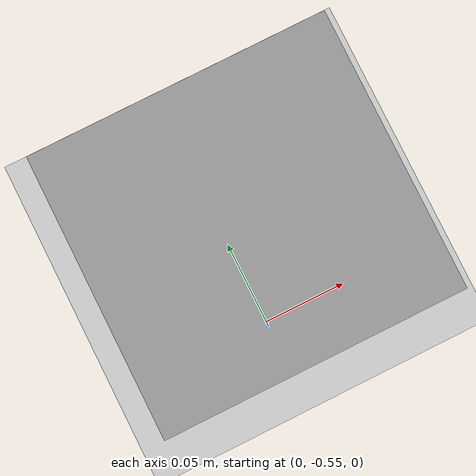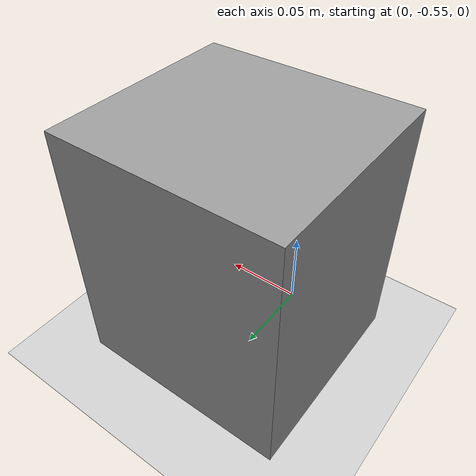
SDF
<sdf version="1.6">
 <world name="default">
  <model name="ground_plane">
   <static>1</static>
   <link name="link">
    <collision name="collision">
     <geometry><plane><normal>0 0 1</normal><size>100 100</size></plane></geometry>
     <surface>
      <contact><collide_bitmask>65535</collide_bitmask></contact>
      <friction><ode><mu>100</mu><mu2>50</mu2></ode></friction>
     </surface>
    </collision>
    <visual name="visual">
     <cast_shadows>0</cast_shadows>
     <geometry><plane><normal>0 0 1</normal><size>100 100</size></plane></geometry>
     <material>
      <script><uri>file://media/materials/scripts/gazebo.material</uri><name>Gazebo/Grey</name></script>
     </material>
    </visual>
   </link>
  </model>
  <model name="unit_box_soft">
   <link name="link">
    <inertial>
     <mass>0.02</mass>
     <inertia>
      <ixx>6.545e-05</ixx>
      <ixy>0</ixy>
      <ixz>0</ixz>
      <iyy>6.894e-05</iyy>
      <iyz>0</iyz>
      <izz>5.449e-05</izz>
     </inertia>
    </inertial>
    <visual name="visual">
     <geometry><box><size>0.131884 0.123693 0.154823</size></box></geometry>
     <material>
      <script><name>Gazebo/Grey</name><uri>file://media/materials/scripts/gazebo.material</uri></script>
      <shader type="vertex"><normal_map>__default__</normal_map></shader>
     </material>
    </visual>
    <collision name="collision">
     <geometry><box><size>0.131884 0.123693 0.154823</size></box></geometry>
     <surface>
      <friction>
       <ode><mu>2000</mu><mu2>2000</mu2><fdir1>0 0 0</fdir1><slip1>0</slip1><slip2>0</slip2></ode>
       <torsional>
        <coefficient>1</coefficient>
        <patch_radius>0</patch_radius>
        <surface_radius>0</surface_radius>
        <use_patch_radius>0</use_patch_radius>
        <ode><slip>0</slip></ode>
       </torsional>
      </friction>
      <bounce><restitution_coefficient>0</restitution_coefficient><threshold>1e+06</threshold></bounce>
      <contact>
       <collide_without_contact>0</collide_without_contact>
       <collide_without_contact_bitmask>1</collide_without_contact_bitmask>
       <collide_bitmask>1</collide_bitmask>
       <ode>
        <soft_cfm>2</soft_cfm>
        <soft_erp>2</soft_erp>
        <kp>1e+13</kp>
        <kd>1</kd>
        <max_vel>0.01</max_vel>
        <min_depth>0</min_depth>
       </ode>
       <bullet>
        <split_impulse>1</split_impulse>
        <split_impulse_penetration_threshold>-0.01</split_impulse_penetration_threshold>
        <soft_cfm>2</soft_cfm>
        <soft_erp>2</soft_erp>
        <kp>1e+13</kp>
        <kd>1</kd>
       </bullet>
      </contact>
     </surface>
    </collision>
   </link>
   <static>0</static>
   <pose>0.009897 -0.503439 0.077407 -3.1e-05 4.5e-05 -1.4e-05</pose>
  </model>
 </world>
</sdf>
